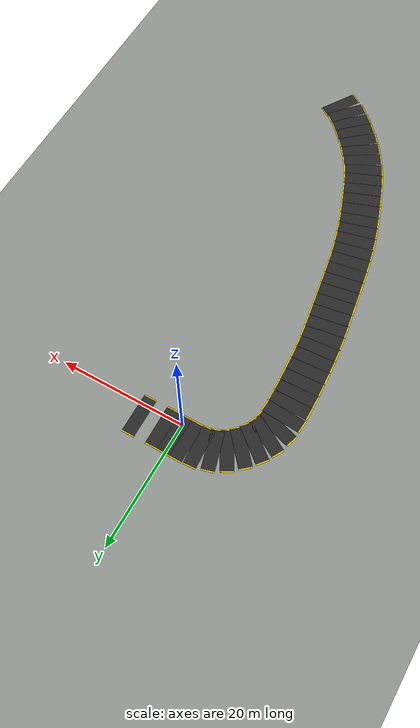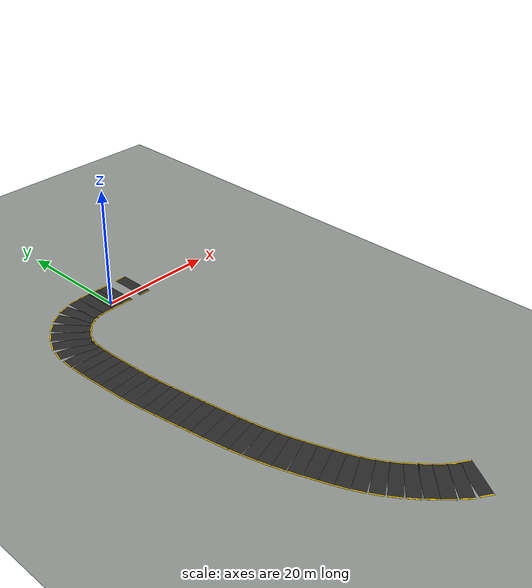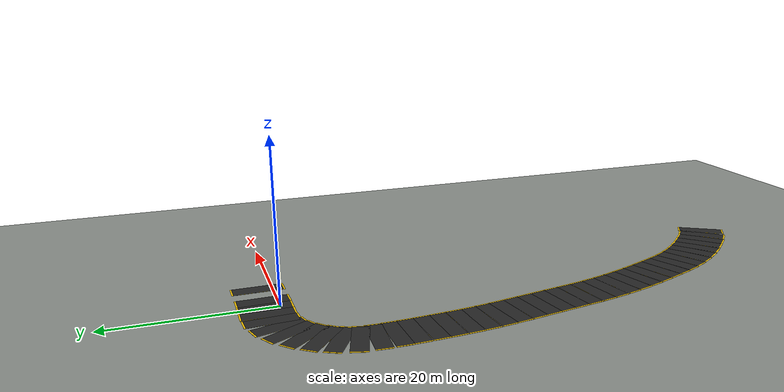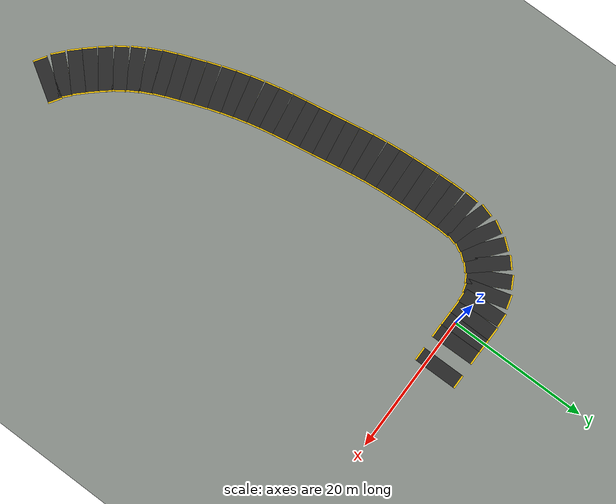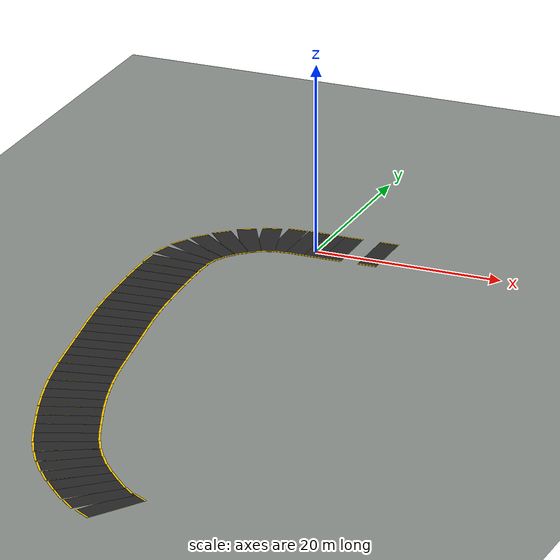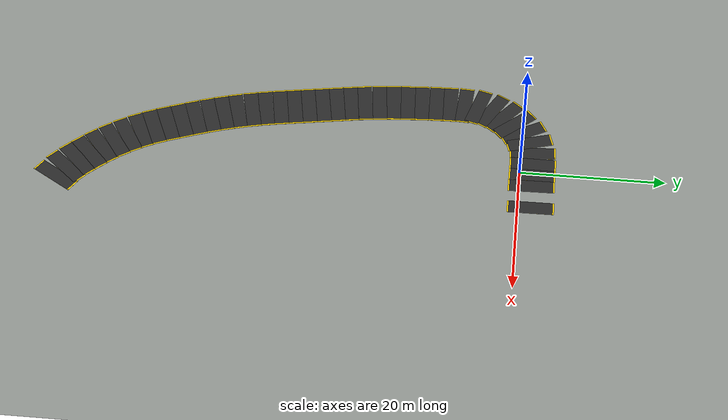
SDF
<sdf version="1.7">
 <world name="custom_road_world">
  <model name="ground_plane">
   <static>true</static>
   <pose>25 -32 -0.005 0 0 0</pose>
   <link name="link">
    <collision name="collision">
     <geometry><plane><normal>0 0 1</normal><size>180 180</size></plane></geometry>
    </collision>
    <visual name="visual">
     <geometry><plane><normal>0 0 1</normal><size>180 180</size></plane></geometry>
     <material>
      <ambient>0.54 0.56 0.54 1</ambient>
      <diffuse>0.54 0.56 0.54 1</diffuse>
      <specular>0.04 0.04 0.04 1</specular>
     </material>
    </visual>
   </link>
  </model>
  <model name="elliptical_road">
   <static>true</static>
   <link name="seg_0">
    <pose>6.089 1.763 0.01 0 0 0.006</pose>
    <visual name="yellow_base_0">
     <pose>0 0 0.001 0 0 0</pose>
     <geometry><box><size>2.0 6.4 0.02</size></box></geometry>
     <material>
      <ambient>1.0 0.8 0.0 1.0</ambient>
      <diffuse>1.0 0.8 0.0 1.0</diffuse>
      <specular>0.1 0.1 0.1 1.0</specular>
     </material>
    </visual>
    <visual name="asphalt_top_0">
     <pose>0 0 0.002 0 0 0</pose>
     <geometry><box><size>2.0 6.0 0.02</size></box></geometry>
     <material>
      <ambient>0.15 0.15 0.15 1.0</ambient>
      <diffuse>0.15 0.15 0.15 1.0</diffuse>
      <specular>0.05 0.05 0.05 1.0</specular>
     </material>
    </visual>
    <visual name="center_line_0">
     <pose>0 0 0.003 0 0 0</pose>
     <geometry><box><size>1.0 0.15 0.001</size></box></geometry>
     <material><ambient>0.9 0.9 0.9 1</ambient><diffuse>0.9 0.9 0.9 1</diffuse></material>
    </visual>
    <collision name="collision_0">
     <pose>0 0 0.002 0 0 0</pose>
     <geometry><box><size>2.0 6.0 0.02</size></box></geometry>
    </collision>
   </link>
   <link name="seg_84">
    <pose>6.395 -63.426 0.01 0 0 2.578</pose>
    <visual name="yellow_base_84">
     <pose>0 0 0.001 0 0 0</pose>
     <geometry><box><size>2.0 6.4 0.02</size></box></geometry>
     <material>
      <ambient>1.0 0.8 0.0 1.0</ambient>
      <diffuse>1.0 0.8 0.0 1.0</diffuse>
      <specular>0.1 0.1 0.1 1.0</specular>
     </material>
    </visual>
    <visual name="asphalt_top_84">
     <pose>0 0 0.002 0 0 0</pose>
     <geometry><box><size>2.0 6.0 0.02</size></box></geometry>
     <material>
      <ambient>0.15 0.15 0.15 1.0</ambient>
      <diffuse>0.15 0.15 0.15 1.0</diffuse>
      <specular>0.05 0.05 0.05 1.0</specular>
     </material>
    </visual>
    <visual name="center_line_84">
     <pose>0 0 0.003 0 0 0</pose>
     <geometry><box><size>1.0 0.15 0.001</size></box></geometry>
     <material><ambient>0.9 0.9 0.9 1</ambient><diffuse>0.9 0.9 0.9 1</diffuse></material>
    </visual>
    <collision name="collision_84">
     <pose>0 0 0.002 0 0 0</pose>
     <geometry><box><size>2.0 6.0 0.02</size></box></geometry>
    </collision>
   </link>
   <link name="seg_85">
    <pose>4.704 -62.357 0.01 0 0 2.412</pose>
    <visual name="yellow_base_85">
     <pose>0 0 0.001 0 0 0</pose>
     <geometry><box><size>2.0 6.4 0.02</size></box></geometry>
     <material>
      <ambient>1.0 0.8 0.0 1.0</ambient>
      <diffuse>1.0 0.8 0.0 1.0</diffuse>
      <specular>0.1 0.1 0.1 1.0</specular>
     </material>
    </visual>
    <visual name="asphalt_top_85">
     <pose>0 0 0.002 0 0 0</pose>
     <geometry><box><size>2.0 6.0 0.02</size></box></geometry>
     <material>
      <ambient>0.15 0.15 0.15 1.0</ambient>
      <diffuse>0.15 0.15 0.15 1.0</diffuse>
      <specular>0.05 0.05 0.05 1.0</specular>
     </material>
    </visual>
    <visual name="center_line_85">
     <pose>0 0 0.003 0 0 0</pose>
     <geometry><box><size>1.0 0.15 0.001</size></box></geometry>
     <material><ambient>0.9 0.9 0.9 1</ambient><diffuse>0.9 0.9 0.9 1</diffuse></material>
    </visual>
    <collision name="collision_85">
     <pose>0 0 0.002 0 0 0</pose>
     <geometry><box><size>2.0 6.0 0.02</size></box></geometry>
    </collision>
   </link>
   <link name="seg_86">
    <pose>3.178 -60.992 0.01 0 0 2.331</pose>
    <visual name="yellow_base_86">
     <pose>0 0 0.001 0 0 0</pose>
     <geometry><box><size>2.0 6.4 0.02</size></box></geometry>
     <material>
      <ambient>1.0 0.8 0.0 1.0</ambient>
      <diffuse>1.0 0.8 0.0 1.0</diffuse>
      <specular>0.1 0.1 0.1 1.0</specular>
     </material>
    </visual>
    <visual name="asphalt_top_86">
     <pose>0 0 0.002 0 0 0</pose>
     <geometry><box><size>2.0 6.0 0.02</size></box></geometry>
     <material>
      <ambient>0.15 0.15 0.15 1.0</ambient>
      <diffuse>0.15 0.15 0.15 1.0</diffuse>
      <specular>0.05 0.05 0.05 1.0</specular>
     </material>
    </visual>
    <visual name="center_line_86">
     <pose>0 0 0.003 0 0 0</pose>
     <geometry><box><size>1.0 0.15 0.001</size></box></geometry>
     <material><ambient>0.9 0.9 0.9 1</ambient><diffuse>0.9 0.9 0.9 1</diffuse></material>
    </visual>
    <collision name="collision_86">
     <pose>0 0 0.002 0 0 0</pose>
     <geometry><box><size>2.0 6.0 0.02</size></box></geometry>
    </collision>
   </link>
   <link name="seg_87">
    <pose>1.837 -59.581 0.01 0 0 2.300</pose>
    <visual name="yellow_base_87">
     <pose>0 0 0.001 0 0 0</pose>
     <geometry><box><size>2.0 6.4 0.02</size></box></geometry>
     <material>
      <ambient>1.0 0.8 0.0 1.0</ambient>
      <diffuse>1.0 0.8 0.0 1.0</diffuse>
      <specular>0.1 0.1 0.1 1.0</specular>
     </material>
    </visual>
    <visual name="asphalt_top_87">
     <pose>0 0 0.002 0 0 0</pose>
     <geometry><box><size>2.0 6.0 0.02</size></box></geometry>
     <material>
      <ambient>0.15 0.15 0.15 1.0</ambient>
      <diffuse>0.15 0.15 0.15 1.0</diffuse>
      <specular>0.05 0.05 0.05 1.0</specular>
     </material>
    </visual>
    <visual name="center_line_87">
     <pose>0 0 0.003 0 0 0</pose>
     <geometry><box><size>1.0 0.15 0.001</size></box></geometry>
     <material><ambient>0.9 0.9 0.9 1</ambient><diffuse>0.9 0.9 0.9 1</diffuse></material>
    </visual>
    <collision name="collision_87">
     <pose>0 0 0.002 0 0 0</pose>
     <geometry><box><size>2.0 6.0 0.02</size></box></geometry>
    </collision>
   </link>
   <link name="seg_88">
    <pose>0.510 -58.096 0.01 0 0 2.235</pose>
    <visual name="yellow_base_88">
     <pose>0 0 0.001 0 0 0</pose>
     <geometry><box><size>2.0 6.4 0.02</size></box></geometry>
     <material>
      <ambient>1.0 0.8 0.0 1.0</ambient>
      <diffuse>1.0 0.8 0.0 1.0</diffuse>
      <specular>0.1 0.1 0.1 1.0</specular>
     </material>
    </visual>
    <visual name="asphalt_top_88">
     <pose>0 0 0.002 0 0 0</pose>
     <geometry><box><size>2.0 6.0 0.02</size></box></geometry>
     <material>
      <ambient>0.15 0.15 0.15 1.0</ambient>
      <diffuse>0.15 0.15 0.15 1.0</diffuse>
      <specular>0.05 0.05 0.05 1.0</specular>
     </material>
    </visual>
    <visual name="center_line_88">
     <pose>0 0 0.003 0 0 0</pose>
     <geometry><box><size>1.0 0.15 0.001</size></box></geometry>
     <material><ambient>0.9 0.9 0.9 1</ambient><diffuse>0.9 0.9 0.9 1</diffuse></material>
    </visual>
    <collision name="collision_88">
     <pose>0 0 0.002 0 0 0</pose>
     <geometry><box><size>2.0 6.0 0.02</size></box></geometry>
    </collision>
   </link>
   <link name="seg_89">
    <pose>-0.736 -56.504 0.01 0 0 2.165</pose>
    <visual name="yellow_base_89">
     <pose>0 0 0.001 0 0 0</pose>
     <geometry><box><size>2.0 6.4 0.02</size></box></geometry>
     <material>
      <ambient>1.0 0.8 0.0 1.0</ambient>
      <diffuse>1.0 0.8 0.0 1.0</diffuse>
      <specular>0.1 0.1 0.1 1.0</specular>
     </material>
    </visual>
    <visual name="asphalt_top_89">
     <pose>0 0 0.002 0 0 0</pose>
     <geometry><box><size>2.0 6.0 0.02</size></box></geometry>
     <material>
      <ambient>0.15 0.15 0.15 1.0</ambient>
      <diffuse>0.15 0.15 0.15 1.0</diffuse>
      <specular>0.05 0.05 0.05 1.0</specular>
     </material>
    </visual>
    <visual name="center_line_89">
     <pose>0 0 0.003 0 0 0</pose>
     <geometry><box><size>1.0 0.15 0.001</size></box></geometry>
     <material><ambient>0.9 0.9 0.9 1</ambient><diffuse>0.9 0.9 0.9 1</diffuse></material>
    </visual>
    <collision name="collision_89">
     <pose>0 0 0.002 0 0 0</pose>
     <geometry><box><size>2.0 6.0 0.02</size></box></geometry>
    </collision>
   </link>
   <link name="seg_90">
    <pose>-1.869 -54.829 0.01 0 0 2.095</pose>
    <visual name="yellow_base_90">
     <pose>0 0 0.001 0 0 0</pose>
     <geometry><box><size>2.0 6.4 0.02</size></box></geometry>
     <material>
      <ambient>1.0 0.8 0.0 1.0</ambient>
      <diffuse>1.0 0.8 0.0 1.0</diffuse>
      <specular>0.1 0.1 0.1 1.0</specular>
     </material>
    </visual>
    <visual name="asphalt_top_90">
     <pose>0 0 0.002 0 0 0</pose>
     <geometry><box><size>2.0 6.0 0.02</size></box></geometry>
     <material>
      <ambient>0.15 0.15 0.15 1.0</ambient>
      <diffuse>0.15 0.15 0.15 1.0</diffuse>
      <specular>0.05 0.05 0.05 1.0</specular>
     </material>
    </visual>
    <visual name="center_line_90">
     <pose>0 0 0.003 0 0 0</pose>
     <geometry><box><size>1.0 0.15 0.001</size></box></geometry>
     <material><ambient>0.9 0.9 0.9 1</ambient><diffuse>0.9 0.9 0.9 1</diffuse></material>
    </visual>
    <collision name="collision_90">
     <pose>0 0 0.002 0 0 0</pose>
     <geometry><box><size>2.0 6.0 0.02</size></box></geometry>
    </collision>
   </link>
   <link name="seg_91">
    <pose>-2.881 -53.079 0.01 0 0 2.027</pose>
    <visual name="yellow_base_91">
     <pose>0 0 0.001 0 0 0</pose>
     <geometry><box><size>2.0 6.4 0.02</size></box></geometry>
     <material>
      <ambient>1.0 0.8 0.0 1.0</ambient>
      <diffuse>1.0 0.8 0.0 1.0</diffuse>
      <specular>0.1 0.1 0.1 1.0</specular>
     </material>
    </visual>
    <visual name="asphalt_top_91">
     <pose>0 0 0.002 0 0 0</pose>
     <geometry><box><size>2.0 6.0 0.02</size></box></geometry>
     <material>
      <ambient>0.15 0.15 0.15 1.0</ambient>
      <diffuse>0.15 0.15 0.15 1.0</diffuse>
      <specular>0.05 0.05 0.05 1.0</specular>
     </material>
    </visual>
    <visual name="center_line_91">
     <pose>0 0 0.003 0 0 0</pose>
     <geometry><box><size>1.0 0.15 0.001</size></box></geometry>
     <material><ambient>0.9 0.9 0.9 1</ambient><diffuse>0.9 0.9 0.9 1</diffuse></material>
    </visual>
    <collision name="collision_91">
     <pose>0 0 0.002 0 0 0</pose>
     <geometry><box><size>2.0 6.0 0.02</size></box></geometry>
    </collision>
   </link>
   <link name="seg_92">
    <pose>-3.725 -51.359 0.01 0 0 1.964</pose>
    <visual name="yellow_base_92">
     <pose>0 0 0.001 0 0 0</pose>
     <geometry><box><size>2.0 6.4 0.02</size></box></geometry>
     <material>
      <ambient>1.0 0.8 0.0 1.0</ambient>
      <diffuse>1.0 0.8 0.0 1.0</diffuse>
      <specular>0.1 0.1 0.1 1.0</specular>
     </material>
    </visual>
    <visual name="asphalt_top_92">
     <pose>0 0 0.002 0 0 0</pose>
     <geometry><box><size>2.0 6.0 0.02</size></box></geometry>
     <material>
      <ambient>0.15 0.15 0.15 1.0</ambient>
      <diffuse>0.15 0.15 0.15 1.0</diffuse>
      <specular>0.05 0.05 0.05 1.0</specular>
     </material>
    </visual>
    <visual name="center_line_92">
     <pose>0 0 0.003 0 0 0</pose>
     <geometry><box><size>1.0 0.15 0.001</size></box></geometry>
     <material><ambient>0.9 0.9 0.9 1</ambient><diffuse>0.9 0.9 0.9 1</diffuse></material>
    </visual>
    <collision name="collision_92">
     <pose>0 0 0.002 0 0 0</pose>
     <geometry><box><size>2.0 6.0 0.02</size></box></geometry>
    </collision>
   </link>
   <link name="seg_93">
    <pose>-4.489 -49.522 0.01 0 0 1.937</pose>
    <visual name="yellow_base_93">
     <pose>0 0 0.001 0 0 0</pose>
     <geometry><box><size>2.0 6.4 0.02</size></box></geometry>
     <material>
      <ambient>1.0 0.8 0.0 1.0</ambient>
      <diffuse>1.0 0.8 0.0 1.0</diffuse>
      <specular>0.1 0.1 0.1 1.0</specular>
     </material>
    </visual>
    <visual name="asphalt_top_93">
     <pose>0 0 0.002 0 0 0</pose>
     <geometry><box><size>2.0 6.0 0.02</size></box></geometry>
     <material>
      <ambient>0.15 0.15 0.15 1.0</ambient>
      <diffuse>0.15 0.15 0.15 1.0</diffuse>
      <specular>0.05 0.05 0.05 1.0</specular>
     </material>
    </visual>
    <visual name="center_line_93">
     <pose>0 0 0.003 0 0 0</pose>
     <geometry><box><size>1.0 0.15 0.001</size></box></geometry>
     <material><ambient>0.9 0.9 0.9 1</ambient><diffuse>0.9 0.9 0.9 1</diffuse></material>
    </visual>
    <collision name="collision_93">
     <pose>0 0 0.002 0 0 0</pose>
     <geometry><box><size>2.0 6.0 0.02</size></box></geometry>
    </collision>
   </link>
   <link name="seg_94">
    <pose>-5.209 -47.644 0.01 0 0 1.932</pose>
    <visual name="yellow_base_94">
     <pose>0 0 0.001 0 0 0</pose>
     <geometry><box><size>2.0 6.4 0.02</size></box></geometry>
     <material>
      <ambient>1.0 0.8 0.0 1.0</ambient>
      <diffuse>1.0 0.8 0.0 1.0</diffuse>
      <specular>0.1 0.1 0.1 1.0</specular>
     </material>
    </visual>
    <visual name="asphalt_top_94">
     <pose>0 0 0.002 0 0 0</pose>
     <geometry><box><size>2.0 6.0 0.02</size></box></geometry>
     <material>
      <ambient>0.15 0.15 0.15 1.0</ambient>
      <diffuse>0.15 0.15 0.15 1.0</diffuse>
      <specular>0.05 0.05 0.05 1.0</specular>
     </material>
    </visual>
    <visual name="center_line_94">
     <pose>0 0 0.003 0 0 0</pose>
     <geometry><box><size>1.0 0.15 0.001</size></box></geometry>
     <material><ambient>0.9 0.9 0.9 1</ambient><diffuse>0.9 0.9 0.9 1</diffuse></material>
    </visual>
    <collision name="collision_94">
     <pose>0 0 0.002 0 0 0</pose>
     <geometry><box><size>2.0 6.0 0.02</size></box></geometry>
    </collision>
   </link>
   <link name="seg_95">
    <pose>-5.924 -45.753 0.01 0 0 1.909</pose>
    <visual name="yellow_base_95">
     <pose>0 0 0.001 0 0 0</pose>
     <geometry><box><size>2.0 6.4 0.02</size></box></geometry>
     <material>
      <ambient>1.0 0.8 0.0 1.0</ambient>
      <diffuse>1.0 0.8 0.0 1.0</diffuse>
      <specular>0.1 0.1 0.1 1.0</specular>
     </material>
    </visual>
    <visual name="asphalt_top_95">
     <pose>0 0 0.002 0 0 0</pose>
     <geometry><box><size>2.0 6.0 0.02</size></box></geometry>
     <material>
      <ambient>0.15 0.15 0.15 1.0</ambient>
      <diffuse>0.15 0.15 0.15 1.0</diffuse>
      <specular>0.05 0.05 0.05 1.0</specular>
     </material>
    </visual>
    <visual name="center_line_95">
     <pose>0 0 0.003 0 0 0</pose>
     <geometry><box><size>1.0 0.15 0.001</size></box></geometry>
     <material><ambient>0.9 0.9 0.9 1</ambient><diffuse>0.9 0.9 0.9 1</diffuse></material>
    </visual>
    <collision name="collision_95">
     <pose>0 0 0.002 0 0 0</pose>
     <geometry><box><size>2.0 6.0 0.02</size></box></geometry>
    </collision>
   </link>
   <link name="seg_96">
    <pose>-6.606 -43.816 0.01 0 0 1.878</pose>
    <visual name="yellow_base_96">
     <pose>0 0 0.001 0 0 0</pose>
     <geometry><box><size>2.0 6.4 0.02</size></box></geometry>
     <material>
      <ambient>1.0 0.8 0.0 1.0</ambient>
      <diffuse>1.0 0.8 0.0 1.0</diffuse>
      <specular>0.1 0.1 0.1 1.0</specular>
     </material>
    </visual>
    <visual name="asphalt_top_96">
     <pose>0 0 0.002 0 0 0</pose>
     <geometry><box><size>2.0 6.0 0.02</size></box></geometry>
     <material>
      <ambient>0.15 0.15 0.15 1.0</ambient>
      <diffuse>0.15 0.15 0.15 1.0</diffuse>
      <specular>0.05 0.05 0.05 1.0</specular>
     </material>
    </visual>
    <visual name="center_line_96">
     <pose>0 0 0.003 0 0 0</pose>
     <geometry><box><size>1.0 0.15 0.001</size></box></geometry>
     <material><ambient>0.9 0.9 0.9 1</ambient><diffuse>0.9 0.9 0.9 1</diffuse></material>
    </visual>
    <collision name="collision_96">
     <pose>0 0 0.002 0 0 0</pose>
     <geometry><box><size>2.0 6.0 0.02</size></box></geometry>
    </collision>
   </link>
   <link name="seg_97">
    <pose>-7.197 -41.954 0.01 0 0 1.847</pose>
    <visual name="yellow_base_97">
     <pose>0 0 0.001 0 0 0</pose>
     <geometry><box><size>2.0 6.4 0.02</size></box></geometry>
     <material>
      <ambient>1.0 0.8 0.0 1.0</ambient>
      <diffuse>1.0 0.8 0.0 1.0</diffuse>
      <specular>0.1 0.1 0.1 1.0</specular>
     </material>
    </visual>
    <visual name="asphalt_top_97">
     <pose>0 0 0.002 0 0 0</pose>
     <geometry><box><size>2.0 6.0 0.02</size></box></geometry>
     <material>
      <ambient>0.15 0.15 0.15 1.0</ambient>
      <diffuse>0.15 0.15 0.15 1.0</diffuse>
      <specular>0.05 0.05 0.05 1.0</specular>
     </material>
    </visual>
    <visual name="center_line_97">
     <pose>0 0 0.003 0 0 0</pose>
     <geometry><box><size>1.0 0.15 0.001</size></box></geometry>
     <material><ambient>0.9 0.9 0.9 1</ambient><diffuse>0.9 0.9 0.9 1</diffuse></material>
    </visual>
    <collision name="collision_97">
     <pose>0 0 0.002 0 0 0</pose>
     <geometry><box><size>2.0 6.0 0.02</size></box></geometry>
    </collision>
   </link>
   <link name="seg_98">
    <pose>-7.730 -40.075 0.01 0 0 1.816</pose>
    <visual name="yellow_base_98">
     <pose>0 0 0.001 0 0 0</pose>
     <geometry><box><size>2.0 6.4 0.02</size></box></geometry>
     <material>
      <ambient>1.0 0.8 0.0 1.0</ambient>
      <diffuse>1.0 0.8 0.0 1.0</diffuse>
      <specular>0.1 0.1 0.1 1.0</specular>
     </material>
    </visual>
    <visual name="asphalt_top_98">
     <pose>0 0 0.002 0 0 0</pose>
     <geometry><box><size>2.0 6.0 0.02</size></box></geometry>
     <material>
      <ambient>0.15 0.15 0.15 1.0</ambient>
      <diffuse>0.15 0.15 0.15 1.0</diffuse>
      <specular>0.05 0.05 0.05 1.0</specular>
     </material>
    </visual>
    <visual name="center_line_98">
     <pose>0 0 0.003 0 0 0</pose>
     <geometry><box><size>1.0 0.15 0.001</size></box></geometry>
     <material><ambient>0.9 0.9 0.9 1</ambient><diffuse>0.9 0.9 0.9 1</diffuse></material>
    </visual>
    <collision name="collision_98">
     <pose>0 0 0.002 0 0 0</pose>
     <geometry><box><size>2.0 6.0 0.02</size></box></geometry>
    </collision>
   </link>
   <link name="seg_99">
    <pose>-8.229 -38.080 0.01 0 0 1.784</pose>
    <visual name="yellow_base_99">
     <pose>0 0 0.001 0 0 0</pose>
     <geometry><box><size>2.0 6.4 0.02</size></box></geometry>
     <material>
      <ambient>1.0 0.8 0.0 1.0</ambient>
      <diffuse>1.0 0.8 0.0 1.0</diffuse>
      <specular>0.1 0.1 0.1 1.0</specular>
     </material>
    </visual>
    <visual name="asphalt_top_99">
     <pose>0 0 0.002 0 0 0</pose>
     <geometry><box><size>2.0 6.0 0.02</size></box></geometry>
     <material>
      <ambient>0.15 0.15 0.15 1.0</ambient>
      <diffuse>0.15 0.15 0.15 1.0</diffuse>
      <specular>0.05 0.05 0.05 1.0</specular>
     </material>
    </visual>
    <visual name="center_line_99">
     <pose>0 0 0.003 0 0 0</pose>
     <geometry><box><size>1.0 0.15 0.001</size></box></geometry>
     <material><ambient>0.9 0.9 0.9 1</ambient><diffuse>0.9 0.9 0.9 1</diffuse></material>
    </visual>
    <collision name="collision_99">
     <pose>0 0 0.002 0 0 0</pose>
     <geometry><box><size>2.0 6.0 0.02</size></box></geometry>
    </collision>
   </link>
   <link name="seg_100">
    <pose>-8.643 -36.170 0.01 0 0 1.754</pose>
    <visual name="yellow_base_100">
     <pose>0 0 0.001 0 0 0</pose>
     <geometry><box><size>2.0 6.4 0.02</size></box></geometry>
     <material>
      <ambient>1.0 0.8 0.0 1.0</ambient>
      <diffuse>1.0 0.8 0.0 1.0</diffuse>
      <specular>0.1 0.1 0.1 1.0</specular>
     </material>
    </visual>
    <visual name="asphalt_top_100">
     <pose>0 0 0.002 0 0 0</pose>
     <geometry><box><size>2.0 6.0 0.02</size></box></geometry>
     <material>
      <ambient>0.15 0.15 0.15 1.0</ambient>
      <diffuse>0.15 0.15 0.15 1.0</diffuse>
      <specular>0.05 0.05 0.05 1.0</specular>
     </material>
    </visual>
    <visual name="center_line_100">
     <pose>0 0 0.003 0 0 0</pose>
     <geometry><box><size>1.0 0.15 0.001</size></box></geometry>
     <material><ambient>0.9 0.9 0.9 1</ambient><diffuse>0.9 0.9 0.9 1</diffuse></material>
    </visual>
    <collision name="collision_100">
     <pose>0 0 0.002 0 0 0</pose>
     <geometry><box><size>2.0 6.0 0.02</size></box></geometry>
    </collision>
   </link>
   <link name="seg_101">
    <pose>-9.016 -34.158 0.01 0 0 1.738</pose>
    <visual name="yellow_base_101">
     <pose>0 0 0.001 0 0 0</pose>
     <geometry><box><size>2.0 6.4 0.02</size></box></geometry>
     <material>
      <ambient>1.0 0.8 0.0 1.0</ambient>
      <diffuse>1.0 0.8 0.0 1.0</diffuse>
      <specular>0.1 0.1 0.1 1.0</specular>
     </material>
    </visual>
    <visual name="asphalt_top_101">
     <pose>0 0 0.002 0 0 0</pose>
     <geometry><box><size>2.0 6.0 0.02</size></box></geometry>
     <material>
      <ambient>0.15 0.15 0.15 1.0</ambient>
      <diffuse>0.15 0.15 0.15 1.0</diffuse>
      <specular>0.05 0.05 0.05 1.0</specular>
     </material>
    </visual>
    <visual name="center_line_101">
     <pose>0 0 0.003 0 0 0</pose>
     <geometry><box><size>1.0 0.15 0.001</size></box></geometry>
     <material><ambient>0.9 0.9 0.9 1</ambient><diffuse>0.9 0.9 0.9 1</diffuse></material>
    </visual>
    <collision name="collision_101">
     <pose>0 0 0.002 0 0 0</pose>
     <geometry><box><size>2.0 6.0 0.02</size></box></geometry>
    </collision>
   </link>
   <link name="seg_102">
    <pose>-9.350 -32.176 0.01 0 0 1.737</pose>
    <visual name="yellow_base_102">
     <pose>0 0 0.001 0 0 0</pose>
     <geometry><box><size>2.0 6.4 0.02</size></box></geometry>
     <material>
      <ambient>1.0 0.8 0.0 1.0</ambient>
      <diffuse>1.0 0.8 0.0 1.0</diffuse>
      <specular>0.1 0.1 0.1 1.0</specular>
     </material>
    </visual>
    <visual name="asphalt_top_102">
     <pose>0 0 0.002 0 0 0</pose>
     <geometry><box><size>2.0 6.0 0.02</size></box></geometry>
     <material>
      <ambient>0.15 0.15 0.15 1.0</ambient>
      <diffuse>0.15 0.15 0.15 1.0</diffuse>
      <specular>0.05 0.05 0.05 1.0</specular>
     </material>
    </visual>
    <visual name="center_line_102">
     <pose>0 0 0.003 0 0 0</pose>
     <geometry><box><size>1.0 0.15 0.001</size></box></geometry>
     <material><ambient>0.9 0.9 0.9 1</ambient><diffuse>0.9 0.9 0.9 1</diffuse></material>
    </visual>
    <collision name="collision_102">
     <pose>0 0 0.002 0 0 0</pose>
     <geometry><box><size>2.0 6.0 0.02</size></box></geometry>
    </collision>
   </link>
   <link name="seg_103">
    <pose>-9.680 -30.203 0.01 0 0 1.737</pose>
    <visual name="yellow_base_103">
     <pose>0 0 0.001 0 0 0</pose>
     <geometry><box><size>2.0 6.4 0.02</size></box></geometry>
     <material>
      <ambient>1.0 0.8 0.0 1.0</ambient>
      <diffuse>1.0 0.8 0.0 1.0</diffuse>
      <specular>0.1 0.1 0.1 1.0</specular>
     </material>
    </visual>
    <visual name="asphalt_top_103">
     <pose>0 0 0.002 0 0 0</pose>
     <geometry><box><size>2.0 6.0 0.02</size></box></geometry>
     <material>
      <ambient>0.15 0.15 0.15 1.0</ambient>
      <diffuse>0.15 0.15 0.15 1.0</diffuse>
      <specular>0.05 0.05 0.05 1.0</specular>
     </material>
    </visual>
    <visual name="center_line_103">
     <pose>0 0 0.003 0 0 0</pose>
     <geometry><box><size>1.0 0.15 0.001</size></box></geometry>
     <material><ambient>0.9 0.9 0.9 1</ambient><diffuse>0.9 0.9 0.9 1</diffuse></material>
    </visual>
    <collision name="collision_103">
     <pose>0 0 0.002 0 0 0</pose>
     <geometry><box><size>2.0 6.0 0.02</size></box></geometry>
    </collision>
   </link>
   <link name="seg_104">
    <pose>-10.011 -28.231 0.01 0 0 1.737</pose>
    <visual name="yellow_base_104">
     <pose>0 0 0.001 0 0 0</pose>
     <geometry><box><size>2.0 6.4 0.02</size></box></geometry>
     <material>
      <ambient>1.0 0.8 0.0 1.0</ambient>
      <diffuse>1.0 0.8 0.0 1.0</diffuse>
      <specular>0.1 0.1 0.1 1.0</specular>
     </material>
    </visual>
    <visual name="asphalt_top_104">
     <pose>0 0 0.002 0 0 0</pose>
     <geometry><box><size>2.0 6.0 0.02</size></box></geometry>
     <material>
      <ambient>0.15 0.15 0.15 1.0</ambient>
      <diffuse>0.15 0.15 0.15 1.0</diffuse>
      <specular>0.05 0.05 0.05 1.0</specular>
     </material>
    </visual>
    <visual name="center_line_104">
     <pose>0 0 0.003 0 0 0</pose>
     <geometry><box><size>1.0 0.15 0.001</size></box></geometry>
     <material><ambient>0.9 0.9 0.9 1</ambient><diffuse>0.9 0.9 0.9 1</diffuse></material>
    </visual>
    <collision name="collision_104">
     <pose>0 0 0.002 0 0 0</pose>
     <geometry><box><size>2.0 6.0 0.02</size></box></geometry>
    </collision>
   </link>
   <link name="seg_105">
    <pose>-10.341 -26.258 0.01 0 0 1.736</pose>
    <visual name="yellow_base_105">
     <pose>0 0 0.001 0 0 0</pose>
     <geometry><box><size>2.0 6.4 0.02</size></box></geometry>
     <material>
      <ambient>1.0 0.8 0.0 1.0</ambient>
      <diffuse>1.0 0.8 0.0 1.0</diffuse>
      <specular>0.1 0.1 0.1 1.0</specular>
     </material>
    </visual>
    <visual name="asphalt_top_105">
     <pose>0 0 0.002 0 0 0</pose>
     <geometry><box><size>2.0 6.0 0.02</size></box></geometry>
     <material>
      <ambient>0.15 0.15 0.15 1.0</ambient>
      <diffuse>0.15 0.15 0.15 1.0</diffuse>
      <specular>0.05 0.05 0.05 1.0</specular>
     </material>
    </visual>
    <visual name="center_line_105">
     <pose>0 0 0.003 0 0 0</pose>
     <geometry><box><size>1.0 0.15 0.001</size></box></geometry>
     <material><ambient>0.9 0.9 0.9 1</ambient><diffuse>0.9 0.9 0.9 1</diffuse></material>
    </visual>
    <collision name="collision_105">
     <pose>0 0 0.002 0 0 0</pose>
     <geometry><box><size>2.0 6.0 0.02</size></box></geometry>
    </collision>
   </link>
   <link name="seg_106">
    <pose>-10.671 -24.280 0.01 0 0 1.722</pose>
    <visual name="yellow_base_106">
     <pose>0 0 0.001 0 0 0</pose>
     <geometry><box><size>2.0 6.4 0.02</size></box></geometry>
     <material>
      <ambient>1.0 0.8 0.0 1.0</ambient>
      <diffuse>1.0 0.8 0.0 1.0</diffuse>
      <specular>0.1 0.1 0.1 1.0</specular>
     </material>
    </visual>
    <visual name="asphalt_top_106">
     <pose>0 0 0.002 0 0 0</pose>
     <geometry><box><size>2.0 6.0 0.02</size></box></geometry>
     <material>
      <ambient>0.15 0.15 0.15 1.0</ambient>
      <diffuse>0.15 0.15 0.15 1.0</diffuse>
      <specular>0.05 0.05 0.05 1.0</specular>
     </material>
    </visual>
    <visual name="center_line_106">
     <pose>0 0 0.003 0 0 0</pose>
     <geometry><box><size>1.0 0.15 0.001</size></box></geometry>
     <material><ambient>0.9 0.9 0.9 1</ambient><diffuse>0.9 0.9 0.9 1</diffuse></material>
    </visual>
    <collision name="collision_106">
     <pose>0 0 0.002 0 0 0</pose>
     <geometry><box><size>2.0 6.0 0.02</size></box></geometry>
    </collision>
   </link>
   <link name="seg_107">
    <pose>-10.964 -22.360 0.01 0 0 1.694</pose>
    <visual name="yellow_base_107">
     <pose>0 0 0.001 0 0 0</pose>
     <geometry><box><size>2.0 6.4 0.02</size></box></geometry>
     <material>
      <ambient>1.0 0.8 0.0 1.0</ambient>
      <diffuse>1.0 0.8 0.0 1.0</diffuse>
      <specular>0.1 0.1 0.1 1.0</specular>
     </material>
    </visual>
    <visual name="asphalt_top_107">
     <pose>0 0 0.002 0 0 0</pose>
     <geometry><box><size>2.0 6.0 0.02</size></box></geometry>
     <material>
      <ambient>0.15 0.15 0.15 1.0</ambient>
      <diffuse>0.15 0.15 0.15 1.0</diffuse>
      <specular>0.05 0.05 0.05 1.0</specular>
     </material>
    </visual>
    <visual name="center_line_107">
     <pose>0 0 0.003 0 0 0</pose>
     <geometry><box><size>1.0 0.15 0.001</size></box></geometry>
     <material><ambient>0.9 0.9 0.9 1</ambient><diffuse>0.9 0.9 0.9 1</diffuse></material>
    </visual>
    <collision name="collision_107">
     <pose>0 0 0.002 0 0 0</pose>
     <geometry><box><size>2.0 6.0 0.02</size></box></geometry>
    </collision>
   </link>
   <link name="seg_108">
    <pose>-11.217 -20.325 0.01 0 0 1.666</pose>
    <visual name="yellow_base_108">
     <pose>0 0 0.001 0 0 0</pose>
     <geometry><box><size>2.0 6.4 0.02</size></box></geometry>
     <material>
      <ambient>1.0 0.8 0.0 1.0</ambient>
      <diffuse>1.0 0.8 0.0 1.0</diffuse>
      <specular>0.1 0.1 0.1 1.0</specular>
     </material>
    </visual>
    <visual name="asphalt_top_108">
     <pose>0 0 0.002 0 0 0</pose>
     <geometry><box><size>2.0 6.0 0.02</size></box></geometry>
     <material>
      <ambient>0.15 0.15 0.15 1.0</ambient>
      <diffuse>0.15 0.15 0.15 1.0</diffuse>
      <specular>0.05 0.05 0.05 1.0</specular>
     </material>
    </visual>
    <visual name="center_line_108">
     <pose>0 0 0.003 0 0 0</pose>
     <geometry><box><size>1.0 0.15 0.001</size></box></geometry>
     <material><ambient>0.9 0.9 0.9 1</ambient><diffuse>0.9 0.9 0.9 1</diffuse></material>
    </visual>
    <collision name="collision_108">
     <pose>0 0 0.002 0 0 0</pose>
     <geometry><box><size>2.0 6.0 0.02</size></box></geometry>
    </collision>
   </link>
   <link name="seg_109">
    <pose>-11.402 -18.386 0.01 0 0 1.640</pose>
    <visual name="yellow_base_109">
     <pose>0 0 0.001 0 0 0</pose>
     <geometry><box><size>2.0 6.4 0.02</size></box></geometry>
     <material>
      <ambient>1.0 0.8 0.0 1.0</ambient>
      <diffuse>1.0 0.8 0.0 1.0</diffuse>
      <specular>0.1 0.1 0.1 1.0</specular>
     </material>
    </visual>
    <visual name="asphalt_top_109">
     <pose>0 0 0.002 0 0 0</pose>
     <geometry><box><size>2.0 6.0 0.02</size></box></geometry>
     <material>
      <ambient>0.15 0.15 0.15 1.0</ambient>
      <diffuse>0.15 0.15 0.15 1.0</diffuse>
      <specular>0.05 0.05 0.05 1.0</specular>
     </material>
    </visual>
    <visual name="center_line_109">
     <pose>0 0 0.003 0 0 0</pose>
     <geometry><box><size>1.0 0.15 0.001</size></box></geometry>
     <material><ambient>0.9 0.9 0.9 1</ambient><diffuse>0.9 0.9 0.9 1</diffuse></material>
    </visual>
    <collision name="collision_109">
     <pose>0 0 0.002 0 0 0</pose>
     <geometry><box><size>2.0 6.0 0.02</size></box></geometry>
    </collision>
   </link>
   <link name="seg_110">
    <pose>-11.543 -16.353 0.01 0 0 1.630</pose>
    <visual name="yellow_base_110">
     <pose>0 0 0.001 0 0 0</pose>
     <geometry><box><size>2.0 6.4 0.02</size></box></geometry>
     <material>
      <ambient>1.0 0.8 0.0 1.0</ambient>
      <diffuse>1.0 0.8 0.0 1.0</diffuse>
      <specular>0.1 0.1 0.1 1.0</specular>
     </material>
    </visual>
    <visual name="asphalt_top_110">
     <pose>0 0 0.002 0 0 0</pose>
     <geometry><box><size>2.0 6.0 0.02</size></box></geometry>
     <material>
      <ambient>0.15 0.15 0.15 1.0</ambient>
      <diffuse>0.15 0.15 0.15 1.0</diffuse>
      <specular>0.05 0.05 0.05 1.0</specular>
     </material>
    </visual>
    <visual name="center_line_110">
     <pose>0 0 0.003 0 0 0</pose>
     <geometry><box><size>1.0 0.15 0.001</size></box></geometry>
     <material><ambient>0.9 0.9 0.9 1</ambient><diffuse>0.9 0.9 0.9 1</diffuse></material>
    </visual>
    <collision name="collision_110">
     <pose>0 0 0.002 0 0 0</pose>
     <geometry><box><size>2.0 6.0 0.02</size></box></geometry>
    </collision>
   </link>
   <link name="seg_111">
    <pose>-11.662 -14.355 0.01 0 0 1.622</pose>
    <visual name="yellow_base_111">
     <pose>0 0 0.001 0 0 0</pose>
     <geometry><box><size>2.0 6.4 0.02</size></box></geometry>
     <material>
      <ambient>1.0 0.8 0.0 1.0</ambient>
      <diffuse>1.0 0.8 0.0 1.0</diffuse>
      <specular>0.1 0.1 0.1 1.0</specular>
     </material>
    </visual>
    <visual name="asphalt_top_111">
     <pose>0 0 0.002 0 0 0</pose>
     <geometry><box><size>2.0 6.0 0.02</size></box></geometry>
     <material>
      <ambient>0.15 0.15 0.15 1.0</ambient>
      <diffuse>0.15 0.15 0.15 1.0</diffuse>
      <specular>0.05 0.05 0.05 1.0</specular>
     </material>
    </visual>
    <visual name="center_line_111">
     <pose>0 0 0.003 0 0 0</pose>
     <geometry><box><size>1.0 0.15 0.001</size></box></geometry>
     <material><ambient>0.9 0.9 0.9 1</ambient><diffuse>0.9 0.9 0.9 1</diffuse></material>
    </visual>
    <collision name="collision_111">
     <pose>0 0 0.002 0 0 0</pose>
     <geometry><box><size>2.0 6.0 0.02</size></box></geometry>
    </collision>
   </link>
   <link name="seg_112">
    <pose>-11.767 -12.322 0.01 0 0 1.597</pose>
    <visual name="yellow_base_112">
     <pose>0 0 0.001 0 0 0</pose>
     <geometry><box><size>2.0 6.4 0.02</size></box></geometry>
     <material>
      <ambient>1.0 0.8 0.0 1.0</ambient>
      <diffuse>1.0 0.8 0.0 1.0</diffuse>
      <specular>0.1 0.1 0.1 1.0</specular>
     </material>
    </visual>
    <visual name="asphalt_top_112">
     <pose>0 0 0.002 0 0 0</pose>
     <geometry><box><size>2.0 6.0 0.02</size></box></geometry>
     <material>
      <ambient>0.15 0.15 0.15 1.0</ambient>
      <diffuse>0.15 0.15 0.15 1.0</diffuse>
      <specular>0.05 0.05 0.05 1.0</specular>
     </material>
    </visual>
    <visual name="center_line_112">
     <pose>0 0 0.003 0 0 0</pose>
     <geometry><box><size>1.0 0.15 0.001</size></box></geometry>
     <material><ambient>0.9 0.9 0.9 1</ambient><diffuse>0.9 0.9 0.9 1</diffuse></material>
    </visual>
    <collision name="collision_112">
     <pose>0 0 0.002 0 0 0</pose>
     <geometry><box><size>2.0 6.0 0.02</size></box></geometry>
    </collision>
   </link>
   <link name="seg_113">
    <pose>-11.818 -10.378 0.01 0 0 1.572</pose>
    <visual name="yellow_base_113">
     <pose>0 0 0.001 0 0 0</pose>
     <geometry><box><size>2.0 6.4 0.02</size></box></geometry>
     <material>
      <ambient>1.0 0.8 0.0 1.0</ambient>
      <diffuse>1.0 0.8 0.0 1.0</diffuse>
      <specular>0.1 0.1 0.1 1.0</specular>
     </material>
    </visual>
    <visual name="asphalt_top_113">
     <pose>0 0 0.002 0 0 0</pose>
     <geometry><box><size>2.0 6.0 0.02</size></box></geometry>
     <material>
      <ambient>0.15 0.15 0.15 1.0</ambient>
      <diffuse>0.15 0.15 0.15 1.0</diffuse>
      <specular>0.05 0.05 0.05 1.0</specular>
     </material>
    </visual>
    <visual name="center_line_113">
     <pose>0 0 0.003 0 0 0</pose>
     <geometry><box><size>1.0 0.15 0.001</size></box></geometry>
     <material><ambient>0.9 0.9 0.9 1</ambient><diffuse>0.9 0.9 0.9 1</diffuse></material>
    </visual>
    <collision name="collision_113">
     <pose>0 0 0.002 0 0 0</pose>
     <geometry><box><size>2.0 6.0 0.02</size></box></geometry>
    </collision>
   </link>
   <link name="seg_114">
    <pose>-11.820 -8.343 0.01 0 0 1.504</pose>
    <visual name="yellow_base_114">
     <pose>0 0 0.001 0 0 0</pose>
     <geometry><box><size>2.0 6.4 0.02</size></box></geometry>
     <material>
      <ambient>1.0 0.8 0.0 1.0</ambient>
      <diffuse>1.0 0.8 0.0 1.0</diffuse>
      <specular>0.1 0.1 0.1 1.0</specular>
     </material>
    </visual>
    <visual name="asphalt_top_114">
     <pose>0 0 0.002 0 0 0</pose>
     <geometry><box><size>2.0 6.0 0.02</size></box></geometry>
     <material>
      <ambient>0.15 0.15 0.15 1.0</ambient>
      <diffuse>0.15 0.15 0.15 1.0</diffuse>
      <specular>0.05 0.05 0.05 1.0</specular>
     </material>
    </visual>
    <visual name="center_line_114">
     <pose>0 0 0.003 0 0 0</pose>
     <geometry><box><size>1.0 0.15 0.001</size></box></geometry>
     <material><ambient>0.9 0.9 0.9 1</ambient><diffuse>0.9 0.9 0.9 1</diffuse></material>
    </visual>
    <collision name="collision_114">
     <pose>0 0 0.002 0 0 0</pose>
     <geometry><box><size>2.0 6.0 0.02</size></box></geometry>
    </collision>
   </link>
   <link name="seg_115">
    <pose>-11.688 -6.368 0.01 0 0 1.287</pose>
    <visual name="yellow_base_115">
     <pose>0 0 0.001 0 0 0</pose>
     <geometry><box><size>2.0 6.4 0.02</size></box></geometry>
     <material>
      <ambient>1.0 0.8 0.0 1.0</ambient>
      <diffuse>1.0 0.8 0.0 1.0</diffuse>
      <specular>0.1 0.1 0.1 1.0</specular>
     </material>
    </visual>
    <visual name="asphalt_top_115">
     <pose>0 0 0.002 0 0 0</pose>
     <geometry><box><size>2.0 6.0 0.02</size></box></geometry>
     <material>
      <ambient>0.15 0.15 0.15 1.0</ambient>
      <diffuse>0.15 0.15 0.15 1.0</diffuse>
      <specular>0.05 0.05 0.05 1.0</specular>
     </material>
    </visual>
    <visual name="center_line_115">
     <pose>0 0 0.003 0 0 0</pose>
     <geometry><box><size>1.0 0.15 0.001</size></box></geometry>
     <material><ambient>0.9 0.9 0.9 1</ambient><diffuse>0.9 0.9 0.9 1</diffuse></material>
    </visual>
    <collision name="collision_115">
     <pose>0 0 0.002 0 0 0</pose>
     <geometry><box><size>2.0 6.0 0.02</size></box></geometry>
    </collision>
   </link>
   <link name="seg_116">
    <pose>-11.128 -4.446 0.01 0 0 1.055</pose>
    <visual name="yellow_base_116">
     <pose>0 0 0.001 0 0 0</pose>
     <geometry><box><size>2.0 6.4 0.02</size></box></geometry>
     <material>
      <ambient>1.0 0.8 0.0 1.0</ambient>
      <diffuse>1.0 0.8 0.0 1.0</diffuse>
      <specular>0.1 0.1 0.1 1.0</specular>
     </material>
    </visual>
    <visual name="asphalt_top_116">
     <pose>0 0 0.002 0 0 0</pose>
     <geometry><box><size>2.0 6.0 0.02</size></box></geometry>
     <material>
      <ambient>0.15 0.15 0.15 1.0</ambient>
      <diffuse>0.15 0.15 0.15 1.0</diffuse>
      <specular>0.05 0.05 0.05 1.0</specular>
     </material>
    </visual>
    <visual name="center_line_116">
     <pose>0 0 0.003 0 0 0</pose>
     <geometry><box><size>1.0 0.15 0.001</size></box></geometry>
     <material><ambient>0.9 0.9 0.9 1</ambient><diffuse>0.9 0.9 0.9 1</diffuse></material>
    </visual>
    <collision name="collision_116">
     <pose>0 0 0.002 0 0 0</pose>
     <geometry><box><size>2.0 6.0 0.02</size></box></geometry>
    </collision>
   </link>
   <link name="seg_117">
    <pose>-10.143 -2.707 0.01 0 0 0.885</pose>
    <visual name="yellow_base_117">
     <pose>0 0 0.001 0 0 0</pose>
     <geometry><box><size>2.0 6.4 0.02</size></box></geometry>
     <material>
      <ambient>1.0 0.8 0.0 1.0</ambient>
      <diffuse>1.0 0.8 0.0 1.0</diffuse>
      <specular>0.1 0.1 0.1 1.0</specular>
     </material>
    </visual>
    <visual name="asphalt_top_117">
     <pose>0 0 0.002 0 0 0</pose>
     <geometry><box><size>2.0 6.0 0.02</size></box></geometry>
     <material>
      <ambient>0.15 0.15 0.15 1.0</ambient>
      <diffuse>0.15 0.15 0.15 1.0</diffuse>
      <specular>0.05 0.05 0.05 1.0</specular>
     </material>
    </visual>
    <visual name="center_line_117">
     <pose>0 0 0.003 0 0 0</pose>
     <geometry><box><size>1.0 0.15 0.001</size></box></geometry>
     <material><ambient>0.9 0.9 0.9 1</ambient><diffuse>0.9 0.9 0.9 1</diffuse></material>
    </visual>
    <collision name="collision_117">
     <pose>0 0 0.002 0 0 0</pose>
     <geometry><box><size>2.0 6.0 0.02</size></box></geometry>
    </collision>
   </link>
   <link name="seg_118">
    <pose>-8.875 -1.159 0.01 0 0 0.715</pose>
    <visual name="yellow_base_118">
     <pose>0 0 0.001 0 0 0</pose>
     <geometry><box><size>2.0 6.4 0.02</size></box></geometry>
     <material>
      <ambient>1.0 0.8 0.0 1.0</ambient>
      <diffuse>1.0 0.8 0.0 1.0</diffuse>
      <specular>0.1 0.1 0.1 1.0</specular>
     </material>
    </visual>
    <visual name="asphalt_top_118">
     <pose>0 0 0.002 0 0 0</pose>
     <geometry><box><size>2.0 6.0 0.02</size></box></geometry>
     <material>
      <ambient>0.15 0.15 0.15 1.0</ambient>
      <diffuse>0.15 0.15 0.15 1.0</diffuse>
      <specular>0.05 0.05 0.05 1.0</specular>
     </material>
    </visual>
    <visual name="center_line_118">
     <pose>0 0 0.003 0 0 0</pose>
     <geometry><box><size>1.0 0.15 0.001</size></box></geometry>
     <material><ambient>0.9 0.9 0.9 1</ambient><diffuse>0.9 0.9 0.9 1</diffuse></material>
    </visual>
    <collision name="collision_118">
     <pose>0 0 0.002 0 0 0</pose>
     <geometry><box><size>2.0 6.0 0.02</size></box></geometry>
    </collision>
   </link>
   <link name="seg_119">
    <pose>-7.378 0.141 0.01 0 0 0.494</pose>
    <visual name="yellow_base_119">
     <pose>0 0 0.001 0 0 0</pose>
     <geometry><box><size>2.0 6.4 0.02</size></box></geometry>
     <material>
      <ambient>1.0 0.8 0.0 1.0</ambient>
      <diffuse>1.0 0.8 0.0 1.0</diffuse>
      <specular>0.1 0.1 0.1 1.0</specular>
     </material>
    </visual>
    <visual name="asphalt_top_119">
     <pose>0 0 0.002 0 0 0</pose>
     <geometry><box><size>2.0 6.0 0.02</size></box></geometry>
     <material>
      <ambient>0.15 0.15 0.15 1.0</ambient>
      <diffuse>0.15 0.15 0.15 1.0</diffuse>
      <specular>0.05 0.05 0.05 1.0</specular>
     </material>
    </visual>
    <visual name="center_line_119">
     <pose>0 0 0.003 0 0 0</pose>
     <geometry><box><size>1.0 0.15 0.001</size></box></geometry>
     <material><ambient>0.9 0.9 0.9 1</ambient><diffuse>0.9 0.9 0.9 1</diffuse></material>
    </visual>
    <collision name="collision_119">
     <pose>0 0 0.002 0 0 0</pose>
     <geometry><box><size>2.0 6.0 0.02</size></box></geometry>
    </collision>
   </link>
   <link name="seg_120">
    <pose>-5.633 1.081 0.01 0 0 0.274</pose>
    <visual name="yellow_base_120">
     <pose>0 0 0.001 0 0 0</pose>
     <geometry><box><size>2.0 6.4 0.02</size></box></geometry>
     <material>
      <ambient>1.0 0.8 0.0 1.0</ambient>
      <diffuse>1.0 0.8 0.0 1.0</diffuse>
      <specular>0.1 0.1 0.1 1.0</specular>
     </material>
    </visual>
    <visual name="asphalt_top_120">
     <pose>0 0 0.002 0 0 0</pose>
     <geometry><box><size>2.0 6.0 0.02</size></box></geometry>
     <material>
      <ambient>0.15 0.15 0.15 1.0</ambient>
      <diffuse>0.15 0.15 0.15 1.0</diffuse>
      <specular>0.05 0.05 0.05 1.0</specular>
     </material>
    </visual>
    <visual name="center_line_120">
     <pose>0 0 0.003 0 0 0</pose>
     <geometry><box><size>1.0 0.15 0.001</size></box></geometry>
     <material><ambient>0.9 0.9 0.9 1</ambient><diffuse>0.9 0.9 0.9 1</diffuse></material>
    </visual>
    <collision name="collision_120">
     <pose>0 0 0.002 0 0 0</pose>
     <geometry><box><size>2.0 6.0 0.02</size></box></geometry>
    </collision>
   </link>
   <link name="seg_121">
    <pose>-3.725 1.617 0.01 0 0 0.058</pose>
    <visual name="yellow_base_121">
     <pose>0 0 0.001 0 0 0</pose>
     <geometry><box><size>2.0 6.4 0.02</size></box></geometry>
     <material>
      <ambient>1.0 0.8 0.0 1.0</ambient>
      <diffuse>1.0 0.8 0.0 1.0</diffuse>
      <specular>0.1 0.1 0.1 1.0</specular>
     </material>
    </visual>
    <visual name="asphalt_top_121">
     <pose>0 0 0.002 0 0 0</pose>
     <geometry><box><size>2.0 6.0 0.02</size></box></geometry>
     <material>
      <ambient>0.15 0.15 0.15 1.0</ambient>
      <diffuse>0.15 0.15 0.15 1.0</diffuse>
      <specular>0.05 0.05 0.05 1.0</specular>
     </material>
    </visual>
    <visual name="center_line_121">
     <pose>0 0 0.003 0 0 0</pose>
     <geometry><box><size>1.0 0.15 0.001</size></box></geometry>
     <material><ambient>0.9 0.9 0.9 1</ambient><diffuse>0.9 0.9 0.9 1</diffuse></material>
    </visual>
    <collision name="collision_121">
     <pose>0 0 0.002 0 0 0</pose>
     <geometry><box><size>2.0 6.0 0.02</size></box></geometry>
    </collision>
   </link>
   <link name="seg_122">
    <pose>-1.734 1.733 0.01 0 0 -0.007</pose>
    <visual name="yellow_base_122">
     <pose>0 0 0.001 0 0 0</pose>
     <geometry><box><size>2.0 6.4 0.02</size></box></geometry>
     <material>
      <ambient>1.0 0.8 0.0 1.0</ambient>
      <diffuse>1.0 0.8 0.0 1.0</diffuse>
      <specular>0.1 0.1 0.1 1.0</specular>
     </material>
    </visual>
    <visual name="asphalt_top_122">
     <pose>0 0 0.002 0 0 0</pose>
     <geometry><box><size>2.0 6.0 0.02</size></box></geometry>
     <material>
      <ambient>0.15 0.15 0.15 1.0</ambient>
      <diffuse>0.15 0.15 0.15 1.0</diffuse>
      <specular>0.05 0.05 0.05 1.0</specular>
     </material>
    </visual>
    <visual name="center_line_122">
     <pose>0 0 0.003 0 0 0</pose>
     <geometry><box><size>1.0 0.15 0.001</size></box></geometry>
     <material><ambient>0.9 0.9 0.9 1</ambient><diffuse>0.9 0.9 0.9 1</diffuse></material>
    </visual>
    <collision name="collision_122">
     <pose>0 0 0.002 0 0 0</pose>
     <geometry><box><size>2.0 6.0 0.02</size></box></geometry>
    </collision>
   </link>
   <link name="seg_123">
    <pose>0.266 1.719 0.01 0 0 -0.007</pose>
    <visual name="yellow_base_123">
     <pose>0 0 0.001 0 0 0</pose>
     <geometry><box><size>2.0 6.4 0.02</size></box></geometry>
     <material>
      <ambient>1.0 0.8 0.0 1.0</ambient>
      <diffuse>1.0 0.8 0.0 1.0</diffuse>
      <specular>0.1 0.1 0.1 1.0</specular>
     </material>
    </visual>
    <visual name="asphalt_top_123">
     <pose>0 0 0.002 0 0 0</pose>
     <geometry><box><size>2.0 6.0 0.02</size></box></geometry>
     <material>
      <ambient>0.15 0.15 0.15 1.0</ambient>
      <diffuse>0.15 0.15 0.15 1.0</diffuse>
      <specular>0.05 0.05 0.05 1.0</specular>
     </material>
    </visual>
    <visual name="center_line_123">
     <pose>0 0 0.003 0 0 0</pose>
     <geometry><box><size>1.0 0.15 0.001</size></box></geometry>
     <material><ambient>0.9 0.9 0.9 1</ambient><diffuse>0.9 0.9 0.9 1</diffuse></material>
    </visual>
    <collision name="collision_123">
     <pose>0 0 0.002 0 0 0</pose>
     <geometry><box><size>2.0 6.0 0.02</size></box></geometry>
    </collision>
   </link>
   <link name="seg_124">
    <pose>2.266 1.705 0.01 0 0 0.015</pose>
    <visual name="yellow_base_124">
     <pose>0 0 0.001 0 0 0</pose>
     <geometry><box><size>2.0 6.4 0.02</size></box></geometry>
     <material>
      <ambient>1.0 0.8 0.0 1.0</ambient>
      <diffuse>1.0 0.8 0.0 1.0</diffuse>
      <specular>0.1 0.1 0.1 1.0</specular>
     </material>
    </visual>
    <visual name="asphalt_top_124">
     <pose>0 0 0.002 0 0 0</pose>
     <geometry><box><size>2.0 6.0 0.02</size></box></geometry>
     <material>
      <ambient>0.15 0.15 0.15 1.0</ambient>
      <diffuse>0.15 0.15 0.15 1.0</diffuse>
      <specular>0.05 0.05 0.05 1.0</specular>
     </material>
    </visual>
    <visual name="center_line_124">
     <pose>0 0 0.003 0 0 0</pose>
     <geometry><box><size>1.0 0.15 0.001</size></box></geometry>
     <material><ambient>0.9 0.9 0.9 1</ambient><diffuse>0.9 0.9 0.9 1</diffuse></material>
    </visual>
    <collision name="collision_124">
     <pose>0 0 0.002 0 0 0</pose>
     <geometry><box><size>2.0 6.0 0.02</size></box></geometry>
    </collision>
   </link>
  </model>
 </world>
</sdf>
